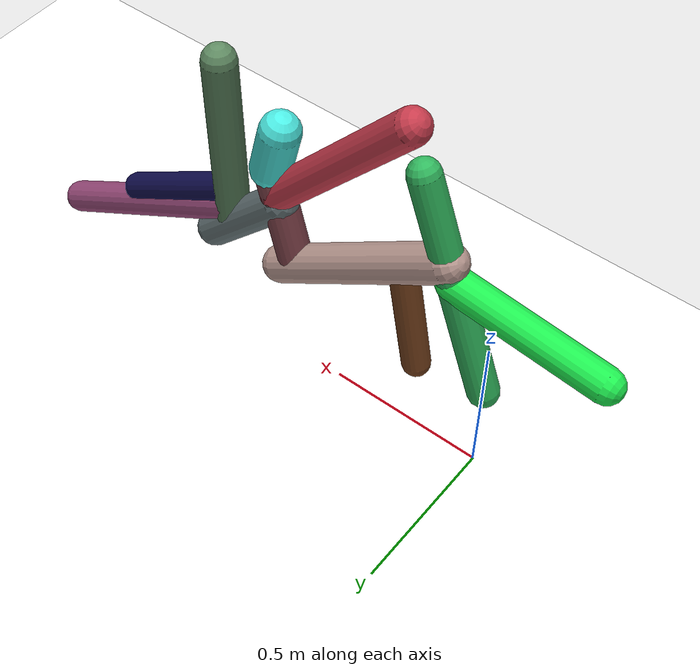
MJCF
<mujoco model="morphology">
  <option timestep="0.01"/>
  <default>
    <default class="/"/>
    <default class="0/"/>
    <default class="0/1/"/>
    <default class="0/1/2/"/>
    <default class="0/1/2/3/"/>
    <default class="0/1/2/4/"/>
    <default class="0/1/2/5/"/>
    <default class="0/1/2/5/6/"/>
    <default class="0/1/2/5/6/7/"/>
    <default class="0/1/2/5/6/8/"/>
    <default class="0/1/9/"/>
    <default class="0/10/"/>
  </default>
  <asset>
    <texture name="texplane" type="2d" builtin="checker" rgb1="0.10000000000000001 0.20000000000000001 0.29999999999999999" rgb2="0.20000000000000001 0.29999999999999999 0.40000000000000002" width="300" height="300"/>
    <material name="MatPlane" class="/" texture="texplane" texrepeat="20 20" specular="1" shininess="1" reflectance="0.5"/>
  </asset>
  <worldbody>
    <light name="//unnamed_light_0" class="/" directional="true" pos="0 0 1.5" dir="0 0 -1.3" cutoff="100" exponent="1" diffuse="1 1 1" specular="0.10000000000000001 0.10000000000000001 0.10000000000000001"/>
    <geom name="ground" class="/" type="plane" size="15 15 0.5" material="MatPlane" rgba="1 1 1 1"/>
    <site name="body" class="/" size="9.9999999999999995e-07 9.9999999999999995e-07 9.9999999999999995e-07" pos="0 0 0.32699600458145139"/>
    <body pos="0 0 0.32699600458145139" name="0/">
      <joint name="0/rootx/" class="/" type="slide" axis="1 0 0" limited="false" stiffness="0" armature="0" damping="0"/>
      <joint name="0/rootz/" class="/" type="slide" axis="0 0 1" limited="false" stiffness="0" armature="0" damping="0"/>
      <joint name="0/rooty/" class="/" type="hinge" axis="0 1 0" limited="false" stiffness="0" armature="0" damping="0"/>
      <geom name="0/geom" class="0/" type="capsule" contype="1" conaffinity="1" condim="3" size="0.048225218248603853" rgba="0.18930152753433371 0.71564286075398886 0.36541481078360816 1" friction="0.59999999999999998 0.10000000000000001 0.10000000000000001" fromto="0 0 0 0.25222162929897163 0 0.68069671476414673"/>
      <site name="0/end0" class="0/" size="0.0050000000000000001" pos="0.25222162929897163 0 0.68069671476414673"/>
      <site name="0/attach1" class="0/" size="9.9999999999999995e-07 9.9999999999999995e-07 9.9999999999999995e-07" pos="0.15573728216847854 0 0.42030438322449015"/>
      <body pos="0.15573728216847854 0 0.42030438322449015" name="0/1/">
        <joint name="0/1/joint/" class="0/" type="hinge" axis="0 1 0" limited="true" range="-62.305777412486798 62.305777412486798"/>
        <geom name="0/1/geom" class="0/1/" type="capsule" contype="1" conaffinity="1" condim="3" size="0.059215855569137076" rgba="0.73559208169404522 0.60911267160530236 0.57724182781012434 1" friction="0.59999999999999998 0.10000000000000001 0.10000000000000001" fromto="0 0 0 0.56711217807873959 0 -0.38832747886084013"/>
        <site name="0/1/end1" class="0/1/" size="0.0050000000000000001" pos="0.56711217807873959 0 -0.38832747886084013"/>
        <site name="0/1/attach2" class="0/1/" size="9.9999999999999995e-07 9.9999999999999995e-07 9.9999999999999995e-07" pos="0.5086328674519689 0 -0.34828403747654874"/>
        <body pos="0.5086328674519689 0 -0.34828403747654874" name="0/1/2/">
          <geom name="0/1/2/geom" class="0/1/2/" type="capsule" contype="1" conaffinity="1" condim="3" size="0.052420760078479817" rgba="0.52591703988000316 0.27734506955394611 0.30898660720154447 1" friction="0.59999999999999998 0.10000000000000001 0.10000000000000001" fromto="0 0 0 0.095138698964153168 0 0.34160616838157232"/>
          <site name="0/1/2/end2" class="0/1/2/" size="0.0050000000000000001" pos="0.095138698964153168 0 0.34160616838157232"/>
          <site name="0/1/2/attach3" class="0/1/2/" size="9.9999999999999995e-07 9.9999999999999995e-07 9.9999999999999995e-07" pos="0.091906830203902556 0 0.33000178114565593"/>
          <body pos="0.091906830203902556 0 0.33000178114565593" name="0/1/2/3/">
            <geom name="0/1/2/3/geom" class="0/1/2/3/" type="capsule" contype="1" conaffinity="1" condim="3" size="0.061661865023595872" rgba="0.29310823368882333 0.91478823075382365 0.8828704206754342 1" friction="0.59999999999999998 0.10000000000000001 0.10000000000000001" fromto="0 0 0 -0.036278329402647858 0 0.15668842662627225"/>
            <site name="0/1/2/3/end3" class="0/1/2/3/" size="0.0050000000000000001" pos="-0.036278329402647858 0 0.15668842662627225"/>
          </body>
          <site name="0/1/2/attach4" class="0/1/2/" size="9.9999999999999995e-07 9.9999999999999995e-07 9.9999999999999995e-07" pos="0.068301300433603496 0 0.24524347915870823"/>
          <body pos="0.068301300433603496 0 0.24524347915870823" name="0/1/2/4/">
            <joint name="0/1/2/4/joint/" class="0/1/2/" type="hinge" axis="0 1 0" limited="true" range="-37.006805637774264 37.006805637774264"/>
            <geom name="0/1/2/4/geom" class="0/1/2/4/" type="capsule" contype="1" conaffinity="1" condim="3" size="0.053559959985295363" rgba="0.77428992506706273 0.23313444718581944 0.29897592075283086 1" friction="0.59999999999999998 0.10000000000000001 0.10000000000000001" fromto="0 0 0 -0.43427228896782755 0 0.49762811471482227"/>
            <site name="0/1/2/4/end4" class="0/1/2/4/" size="0.0050000000000000001" pos="-0.43427228896782755 0 0.49762811471482227"/>
          </body>
          <site name="0/1/2/attach5" class="0/1/2/" size="9.9999999999999995e-07 9.9999999999999995e-07 9.9999999999999995e-07" pos="0.060206158513255767 0 0.21617696422815433"/>
          <body pos="0.060206158513255767 0 0.21617696422815433" name="0/1/2/5/">
            <joint name="0/1/2/5/joint/" class="0/1/2/" type="hinge" axis="0 1 0" limited="true" range="-51.690504881507827 51.690504881507827"/>
            <geom name="0/1/2/5/geom" class="0/1/2/5/" type="capsule" contype="1" conaffinity="1" condim="3" size="0.057042509751551132" rgba="0.39632574403459186 0.45475043065268883 0.46405212779362315 1" friction="0.59999999999999998 0.10000000000000001 0.10000000000000001" fromto="0 0 0 0.25757305984019618 0 -0.26947020058864529"/>
            <site name="0/1/2/5/end5" class="0/1/2/5/" size="0.0050000000000000001" pos="0.25757305984019618 0 -0.26947020058864529"/>
            <site name="0/1/2/5/attach6" class="0/1/2/5/" size="9.9999999999999995e-07 9.9999999999999995e-07 9.9999999999999995e-07" pos="0.17953149217689468 0 -0.18782394105541003"/>
            <body pos="0.17953149217689468 0 -0.18782394105541003" name="0/1/2/5/6/">
              <joint name="0/1/2/5/6/joint/" class="0/1/2/5/" type="hinge" axis="0 1 0" limited="true" range="-66.580125341069362 66.580125341069362"/>
              <geom name="0/1/2/5/6/geom" class="0/1/2/5/6/" type="capsule" contype="1" conaffinity="1" condim="3" size="0.052524246273404677" rgba="0.37175267920155131 0.53883757067596505 0.38317776478322596 1" friction="0.59999999999999998 0.10000000000000001 0.10000000000000001" fromto="0 0 0 0.025034788396099295 0 0.5927871761789838"/>
              <site name="0/1/2/5/6/end6" class="0/1/2/5/6/" size="0.0050000000000000001" pos="0.025034788396099295 0 0.5927871761789838"/>
              <site name="0/1/2/5/6/attach7" class="0/1/2/5/6/" size="9.9999999999999995e-07 9.9999999999999995e-07 9.9999999999999995e-07" pos="0.0028110730755011699 0 0.066562099271378267"/>
              <body pos="0.0028110730755011699 0 0.066562099271378267" name="0/1/2/5/6/7/">
                <joint name="0/1/2/5/6/7/joint/" class="0/1/2/5/6/" type="hinge" axis="0 1 0" limited="true" range="-46.616958832301371 46.616958832301371"/>
                <geom name="0/1/2/5/6/7/geom" class="0/1/2/5/6/7/" type="capsule" contype="1" conaffinity="1" condim="3" size="0.051242832272587996" rgba="0.59346140136751657 0.2890273278123745 0.47433749133132252 1" friction="0.59999999999999998 0.10000000000000001 0.10000000000000001" fromto="0 0 0 0.68290834502873077 0 -0.39393146880974961"/>
                <site name="0/1/2/5/6/7/end7" class="0/1/2/5/6/7/" size="0.0050000000000000001" pos="0.68290834502873077 0 -0.39393146880974961"/>
              </body>
              <site name="0/1/2/5/6/attach8" class="0/1/2/5/6/" size="9.9999999999999995e-07 9.9999999999999995e-07 9.9999999999999995e-07" pos="0.0056485780604808326 0 0.13375006750289584"/>
              <body pos="0.0056485780604808326 0 0.13375006750289584" name="0/1/2/5/6/8/">
                <joint name="0/1/2/5/6/8/joint/" class="0/1/2/5/6/" type="hinge" axis="0 1 0" limited="true" range="-65.654309318922444 65.654309318922444"/>
                <geom name="0/1/2/5/6/8/geom" class="0/1/2/5/6/8/" type="capsule" contype="1" conaffinity="1" condim="3" size="0.045422773357130922" rgba="0.064835074505571466 0.05443098731733953 0.30280142248090081 1" friction="0.59999999999999998 0.10000000000000001 0.10000000000000001" fromto="0 0 0 0.39389465186758166 0 -0.24024638789266239"/>
                <site name="0/1/2/5/6/8/end8" class="0/1/2/5/6/8/" size="0.0050000000000000001" pos="0.39389465186758166 0 -0.24024638789266239"/>
              </body>
            </body>
          </body>
        </body>
        <site name="0/1/attach9" class="0/1/" size="9.9999999999999995e-07 9.9999999999999995e-07 9.9999999999999995e-07" pos="0.14152292630780278 0 -0.096907178682534109"/>
        <body pos="0.14152292630780278 0 -0.096907178682534109" name="0/1/9/">
          <geom name="0/1/9/geom" class="0/1/9/" type="capsule" contype="1" conaffinity="1" condim="3" size="0.043508542722849854" rgba="0.49409494923767516 0.27482444780966786 0.12194706308362169 1" friction="0.59999999999999998 0.10000000000000001 0.10000000000000001" fromto="0 0 0 -0.070489750561125275 0 -0.37113286744602358"/>
          <site name="0/1/9/end9" class="0/1/9/" size="0.0050000000000000001" pos="-0.070489750561125275 0 -0.37113286744602358"/>
        </body>
      </body>
      <site name="0/attach10" class="0/" size="9.9999999999999995e-07 9.9999999999999995e-07 9.9999999999999995e-07" pos="0.13282922573831463 0 0.35848003137574158"/>
      <body pos="0.13282922573831463 0 0.35848003137574158" name="0/10/">
        <geom name="0/10/geom" class="0/10/" type="capsule" contype="1" conaffinity="1" condim="3" size="0.051872577242793282" rgba="0.11428423344915994 0.92380652345838665 0.30938766073766211 1" friction="0.59999999999999998 0.10000000000000001 0.10000000000000001" fromto="0 0 0 -0.47608844106979786 0 -0.057195966600340098"/>
        <site name="0/10/end10" class="0/10/" size="0.0050000000000000001" pos="-0.47608844106979786 0 -0.057195966600340098"/>
      </body>
      <camera name="0/side" class="0/" mode="trackcom" pos="0.40000000000000002 -4 0.20000000000000001" quat="0.70699999999999996 0.70699999999999996 0 0"/>
    </body>
  </worldbody>
  <actuator>
    <motor name="0/1/motor" class="0/1/" ctrllimited="true" ctrlrange="-1 1" gear="73" joint="0/1/joint/"/>
    <motor name="0/1/2/4/motor" class="0/1/2/4/" ctrllimited="true" ctrlrange="-1 1" gear="77" joint="0/1/2/4/joint/"/>
    <motor name="0/1/2/5/motor" class="0/1/2/5/" ctrllimited="true" ctrlrange="-1 1" gear="77" joint="0/1/2/5/joint/"/>
    <motor name="0/1/2/5/6/motor" class="0/1/2/5/6/" ctrllimited="true" ctrlrange="-1 1" gear="69" joint="0/1/2/5/6/joint/"/>
    <motor name="0/1/2/5/6/7/motor" class="0/1/2/5/6/7/" ctrllimited="true" ctrlrange="-1 1" gear="53" joint="0/1/2/5/6/7/joint/"/>
    <motor name="0/1/2/5/6/8/motor" class="0/1/2/5/6/8/" ctrllimited="true" ctrlrange="-1 1" gear="52" joint="0/1/2/5/6/8/joint/"/>
  </actuator>
  <sensor>
    <subtreelinvel name="velocity" body="0/"/>
  </sensor>
</mujoco>
